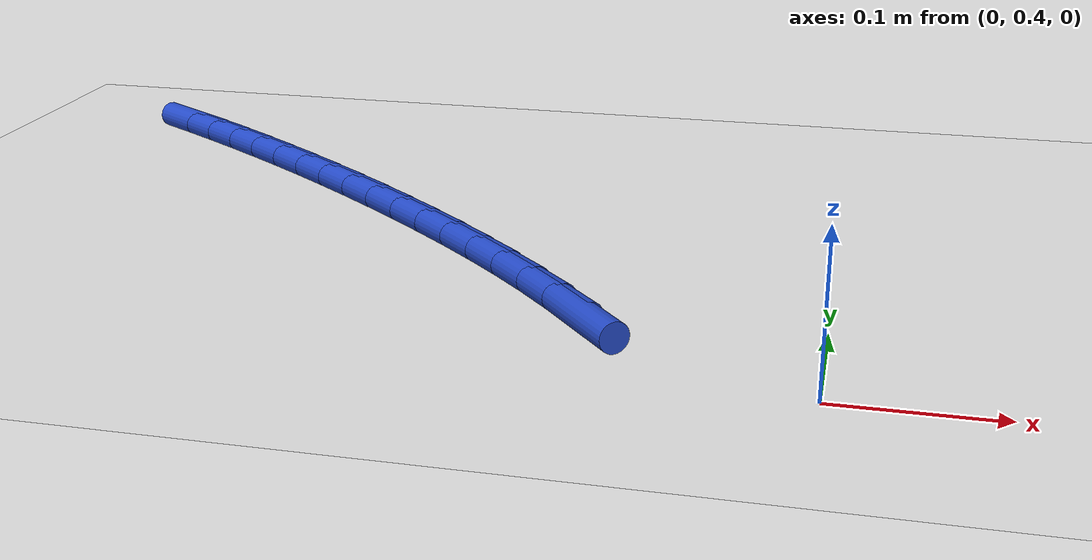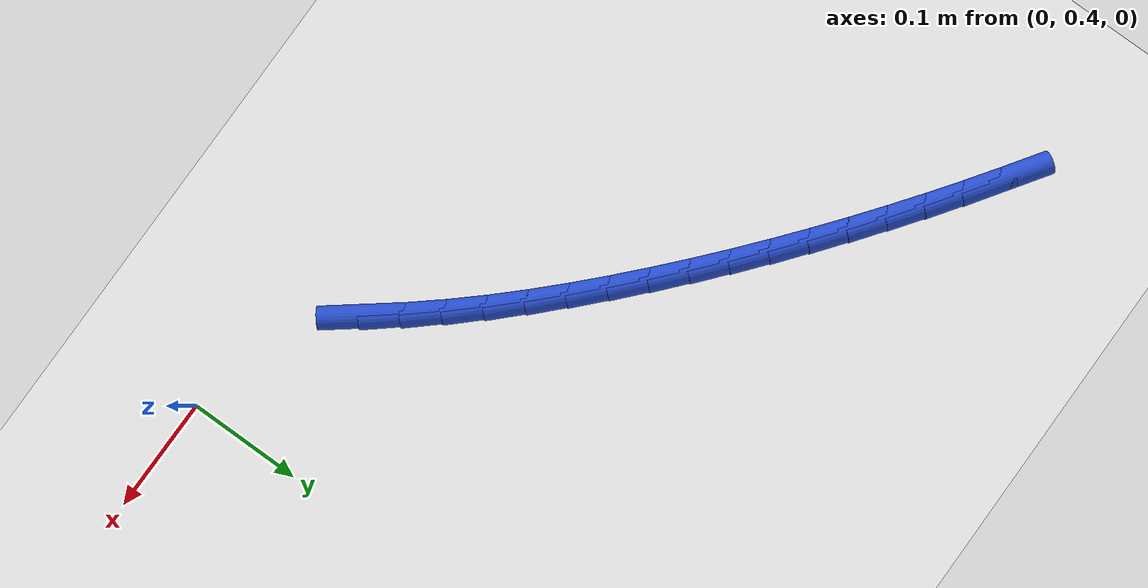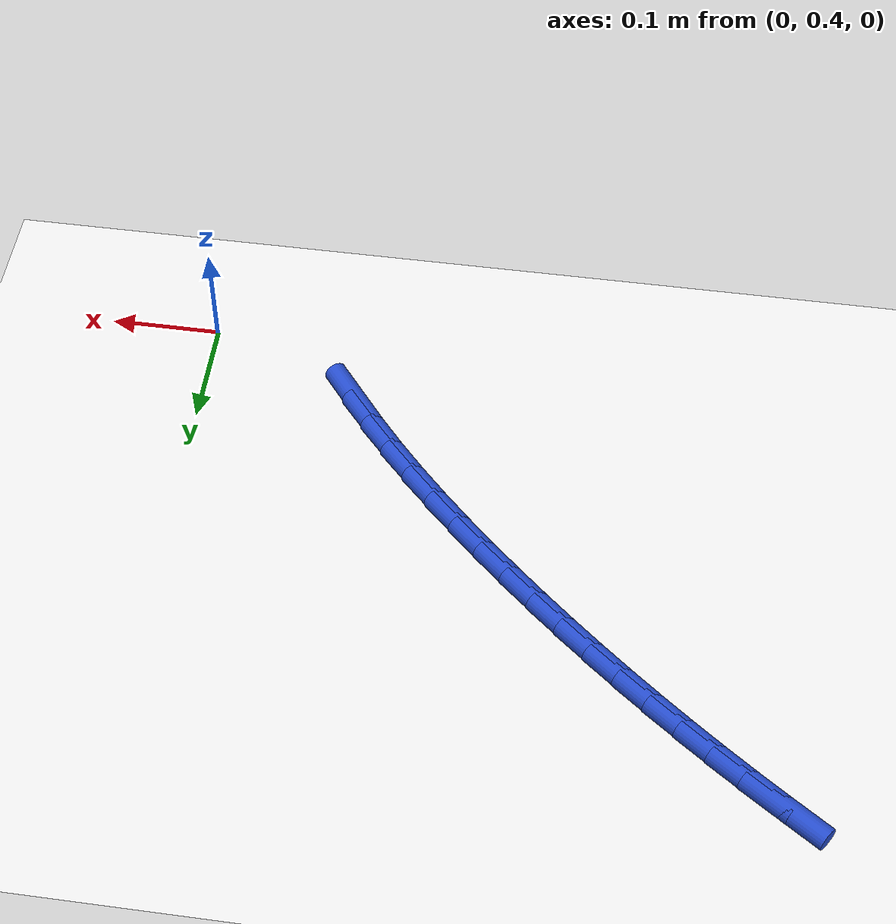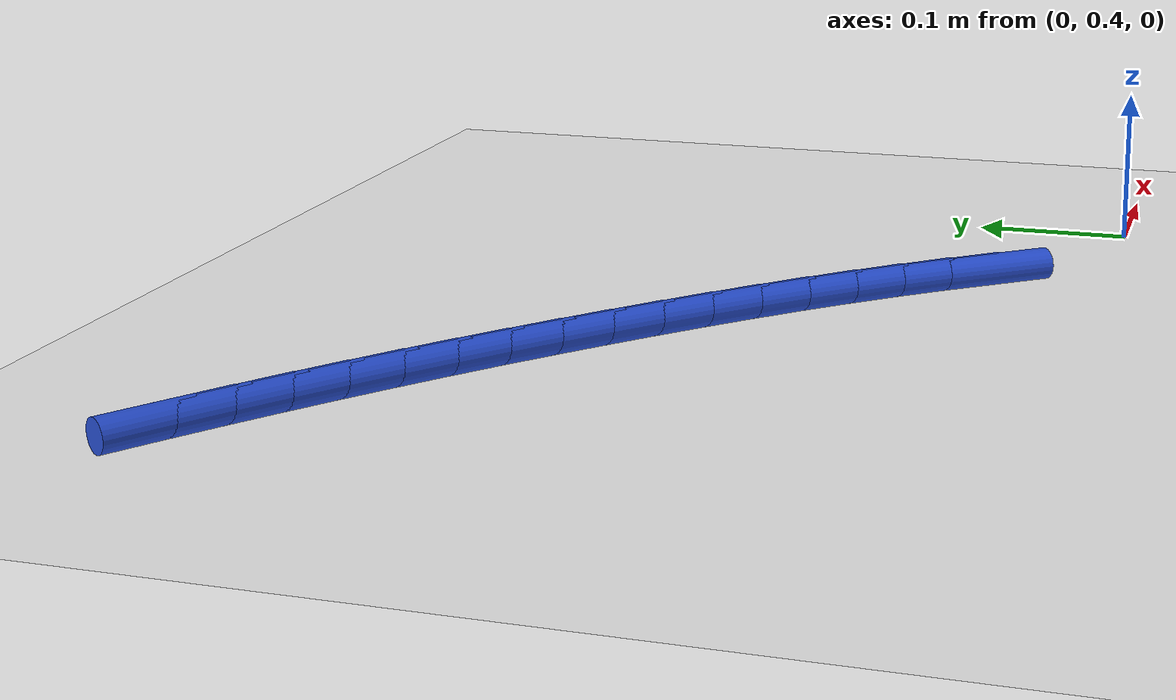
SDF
<sdf version="1.6">
 <world name="default">
  <model name="ground_plane">
   <static>1</static>
   <link name="link">
    <collision name="collision">
     <geometry><plane><normal>0 0 1</normal><size>100 100</size></plane></geometry>
     <surface><friction><ode><mu>100</mu><mu2>50</mu2></ode></friction></surface>
    </collision>
    <visual name="visual">
     <cast_shadows>0</cast_shadows>
     <geometry><plane><normal>0 0 1</normal><size>100 100</size></plane></geometry>
     <material>
      <script><uri>file://media/materials/scripts/gazebo.material</uri><name>Gazebo/WhiteGlow</name></script>
     </material>
    </visual>
   </link>
  </model>
  <model name="line">
   <link name="link_15">
    <pose>-0.14235689407006086 0.47142312569994416 0.01 0 1.57 -0.9056772445537078</pose>
    <collision name="collision">
     <geometry><cylinder><radius>0.01</radius><length>0.08</length></cylinder></geometry>
    </collision>
    <visual name="visual">
     <material>
      <script><name>Gazebo/Blue</name><uri>file://media/materials/scripts/gazebo.material</uri></script>
     </material>
     <geometry><cylinder><radius>0.01</radius><length>0.08</length></cylinder></geometry>
    </visual>
   </link>
   <link name="link_16">
    <pose>-0.1631892840227857 0.49798352609177604 0.01 0 1.57 -0.8713841653663587</pose>
    <collision name="collision">
     <geometry><cylinder><radius>0.01</radius><length>0.08</length></cylinder></geometry>
    </collision>
    <visual name="visual">
     <material>
      <script><name>Gazebo/Blue</name><uri>file://media/materials/scripts/gazebo.material</uri></script>
     </material>
     <geometry><cylinder><radius>0.01</radius><length>0.08</length></cylinder></geometry>
    </visual>
   </link>
   <link name="link_17">
    <pose>-0.185011348077805 0.5239225242522902 0.01 0 1.57 -0.8403669960143396</pose>
    <collision name="collision">
     <geometry><cylinder><radius>0.01</radius><length>0.08</length></cylinder></geometry>
    </collision>
    <visual name="visual">
     <material>
      <script><name>Gazebo/Blue</name><uri>file://media/materials/scripts/gazebo.material</uri></script>
     </material>
     <geometry><cylinder><radius>0.01</radius><length>0.08</length></cylinder></geometry>
    </visual>
   </link>
   <link name="link_18">
    <pose>-0.20770701708350353 0.5492612504894079 0.01 0 1.57 -0.812487660986767</pose>
    <collision name="collision">
     <geometry><cylinder><radius>0.01</radius><length>0.08</length></cylinder></geometry>
    </collision>
    <visual name="visual">
     <material>
      <script><name>Gazebo/Blue</name><uri>file://media/materials/scripts/gazebo.material</uri></script>
     </material>
     <geometry><cylinder><radius>0.01</radius><length>0.08</length></cylinder></geometry>
    </visual>
   </link>
   <link name="link_19">
    <pose>-0.23116022188826635 0.5740208351110511 0.01 0 1.57 -0.7876116209407888</pose>
    <collision name="collision">
     <geometry><cylinder><radius>0.01</radius><length>0.08</length></cylinder></geometry>
    </collision>
    <visual name="visual">
     <material>
      <script><name>Gazebo/Blue</name><uri>file://media/materials/scripts/gazebo.material</uri></script>
     </material>
     <geometry><cylinder><radius>0.01</radius><length>0.08</length></cylinder></geometry>
    </visual>
   </link>
   <link name="link_20">
    <pose>-0.2552548933404783 0.5982224084251409 0.01 0 1.57 -0.7656144477485122</pose>
    <collision name="collision">
     <geometry><cylinder><radius>0.01</radius><length>0.08</length></cylinder></geometry>
    </collision>
    <visual name="visual">
     <material>
      <script><name>Gazebo/Blue</name><uri>file://media/materials/scripts/gazebo.material</uri></script>
     </material>
     <geometry><cylinder><radius>0.01</radius><length>0.08</length></cylinder></geometry>
    </visual>
   </link>
   <link name="link_21">
    <pose>-0.2798749622885242 0.6218871007395987 0.01 0 1.57 -0.7463868220054993</pose>
    <collision name="collision">
     <geometry><cylinder><radius>0.01</radius><length>0.08</length></cylinder></geometry>
    </collision>
    <visual name="visual">
     <material>
      <script><name>Gazebo/Blue</name><uri>file://media/materials/scripts/gazebo.material</uri></script>
     </material>
     <geometry><cylinder><radius>0.01</radius><length>0.08</length></cylinder></geometry>
    </visual>
   </link>
   <link name="link_22">
    <pose>-0.304904359580789 0.6450360423623459 0.01 0 1.57 -0.7295826748881026</pose>
    <collision name="collision">
     <geometry><cylinder><radius>0.01</radius><length>0.08</length></cylinder></geometry>
    </collision>
    <visual name="visual">
     <material>
      <script><name>Gazebo/Blue</name><uri>file://media/materials/scripts/gazebo.material</uri></script>
     </material>
     <geometry><cylinder><radius>0.01</radius><length>0.08</length></cylinder></geometry>
    </visual>
   </link>
   <link name="link_23">
    <pose>-0.3302377116236706 0.6676882709718833 0.01 0 1.57 -0.7136197527650386</pose>
    <collision name="collision">
     <geometry><cylinder><radius>0.01</radius><length>0.08</length></cylinder></geometry>
    </collision>
    <visual name="visual">
     <material>
      <script><name>Gazebo/Blue</name><uri>file://media/materials/scripts/gazebo.material</uri></script>
     </material>
     <geometry><cylinder><radius>0.01</radius><length>0.08</length></cylinder></geometry>
    </visual>
   </link>
   <link name="link_24">
    <pose>-0.35583363456779177 0.6898503043930251 0.01 0 1.57 -0.6979207393844671</pose>
    <collision name="collision">
     <geometry><cylinder><radius>0.01</radius><length>0.08</length></cylinder></geometry>
    </collision>
    <visual name="visual">
     <material>
      <script><name>Gazebo/Blue</name><uri>file://media/materials/scripts/gazebo.material</uri></script>
     </material>
     <geometry><cylinder><radius>0.01</radius><length>0.08</length></cylinder></geometry>
    </visual>
   </link>
   <link name="link_25">
    <pose>-0.38167443776278376 0.7115240247798469 0.01 0 1.57 -0.68247843453223</pose>
    <collision name="collision">
     <geometry><cylinder><radius>0.01</radius><length>0.08</length></cylinder></geometry>
    </collision>
    <visual name="visual">
     <material>
      <script><name>Gazebo/Blue</name><uri>file://media/materials/scripts/gazebo.material</uri></script>
     </material>
     <geometry><cylinder><radius>0.01</radius><length>0.08</length></cylinder></geometry>
    </visual>
   </link>
   <link name="link_26">
    <pose>-0.4077424690165581 0.7327113067619049 0.01 0 1.57 -0.6672861522883738</pose>
    <collision name="collision">
     <geometry><cylinder><radius>0.01</radius><length>0.08</length></cylinder></geometry>
    </collision>
    <visual name="visual">
     <material>
      <script><name>Gazebo/Blue</name><uri>file://media/materials/scripts/gazebo.material</uri></script>
     </material>
     <geometry><cylinder><radius>0.01</radius><length>0.08</length></cylinder></geometry>
    </visual>
   </link>
   <link name="link_27">
    <pose>-0.4340200761370263 0.753414024968755 0.01 0 1.57 -0.6523368322119392</pose>
    <collision name="collision">
     <geometry><cylinder><radius>0.01</radius><length>0.08</length></cylinder></geometry>
    </collision>
    <visual name="visual">
     <material>
      <script><name>Gazebo/Blue</name><uri>file://media/materials/scripts/gazebo.material</uri></script>
     </material>
     <geometry><cylinder><radius>0.01</radius><length>0.08</length></cylinder></geometry>
    </visual>
   </link>
   <link name="link_28">
    <pose>-0.4604896069321003 0.7736340540299536 0.01 0 1.57 -0.6376230663312977</pose>
    <collision name="collision">
     <geometry><cylinder><radius>0.01</radius><length>0.08</length></cylinder></geometry>
    </collision>
    <visual name="visual">
     <material>
      <script><name>Gazebo/Blue</name><uri>file://media/materials/scripts/gazebo.material</uri></script>
     </material>
     <geometry><cylinder><radius>0.01</radius><length>0.08</length></cylinder></geometry>
    </visual>
   </link>
   <link name="link_29">
    <pose>-0.4871334092096914 0.7933732685750569 0.01 0 1.57 -0.6231371224895905</pose>
    <collision name="collision">
     <geometry><cylinder><radius>0.01</radius><length>0.08</length></cylinder></geometry>
    </collision>
    <visual name="visual">
     <material>
      <script><name>Gazebo/Blue</name><uri>file://media/materials/scripts/gazebo.material</uri></script>
     </material>
     <geometry><cylinder><radius>0.01</radius><length>0.08</length></cylinder></geometry>
    </visual>
   </link>
   <link name="link_30">
    <pose>-0.5139338307777117 0.8126335432336214 0.01 0 1.57 -0.6088783524560051</pose>
    <collision name="collision">
     <geometry><cylinder><radius>0.01</radius><length>0.08</length></cylinder></geometry>
    </collision>
    <visual name="visual">
     <material>
      <script><name>Gazebo/Blue</name><uri>file://media/materials/scripts/gazebo.material</uri></script>
     </material>
     <geometry><cylinder><radius>0.01</radius><length>0.08</length></cylinder></geometry>
    </visual>
   </link>
   <link name="link_31">
    <pose>-0.5408732568803185 0.8314170745424095 0.01 0 1.57 -0.5958637551251947</pose>
    <collision name="collision">
     <geometry><cylinder><radius>0.01</radius><length>0.08</length></cylinder></geometry>
    </collision>
    <visual name="visual">
     <material>
      <script><name>Gazebo/Blue</name><uri>file://media/materials/scripts/gazebo.material</uri></script>
     </material>
     <geometry><cylinder><radius>0.01</radius><length>0.08</length></cylinder></geometry>
    </visual>
   </link>
  </model>
 </world>
</sdf>
